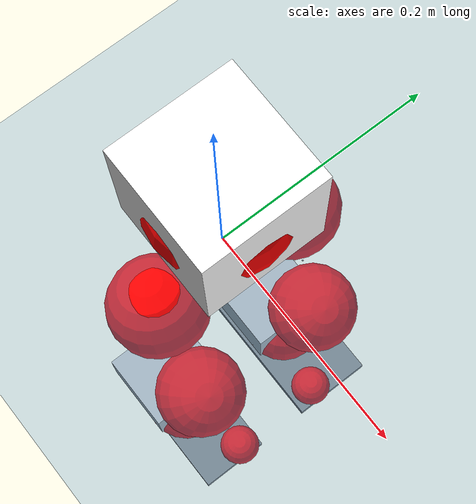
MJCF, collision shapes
<mujoco model="pi_12dof_release_v1">
  <compiler angle="radian" assetdir="assets" balanceinertia="true" inertiafromgeom="false"/>

  <option timestep="0.005" density="1.2" viscosity="2e-05"/>

  <size nkey="1"/>

  <visual>
    <quality shadowsize="8192"/>
    <map shadowclip="0.5"/>
  </visual>

  <default>
    <default class="/">
      <joint armature="0.01" damping="0.01" frictionloss="0.01"/>
      <geom contype="0" conaffinity="0" group="1" solref="-1000 -80"/>
      <site size="0.01 0.005 0.005" group="5"/>
      <general forcelimited="true" biastype="affine" gainprm="20" biasprm="0 -20 -0.5"/>
      <default class="foot">
        <geom size="0.0845 0.036 0.005" type="box" condim="6" group="4" priority="1" friction="0.9 0.2 0.2" solimp="0.015 1 0.005"/>
      </default>
      <default class="reward_collision_sphere">
        <geom group="5" rgba="1 0 0 1"/>
      </default>
    </default>
  </default>

  <asset>
    <texture type="skybox" colorspace="auto" name="//unnamed_texture_0" builtin="gradient" rgb1="0.95 0.95 0.95" rgb2="0.95 0.95 0.95" width="100" height="600"/>
    <texture type="2d" colorspace="auto" name="texplane" builtin="checker" rgb1="0.345 0.575 0.748" rgb2="0.345 0.575 0.748" markrgb="1 1 1" width="512" height="512"/>
    <material name="MatPlane" class="/" texture="texplane" texuniform="true" texrepeat="2 2" specular="0.9"/>
    <mesh name="baselink_1" class="/" file="baselink_1.STL"/>
    <mesh name="r_hip_pitch_link" class="/" file="r_hip_pitch_link.STL"/>
    <mesh name="r_hip_roll_link" class="/" file="r_hip_roll_link.STL"/>
    <mesh name="r_thigh_link" class="/" file="r_thigh_link.STL"/>
    <mesh name="r_calf_link" class="/" file="r_calf_link.STL"/>
    <mesh name="r_ankle_pitch_link" class="/" file="r_ankle_pitch_link.STL"/>
    <mesh name="r_ankle_roll_link" class="/" file="r_ankle_roll_link.STL"/>
    <mesh name="l_hip_pitch_link" class="/" file="l_hip_pitch_link.STL"/>
    <mesh name="l_hip_roll_link" class="/" file="l_hip_roll_link.STL"/>
    <mesh name="l_thigh_link" class="/" file="l_thigh_link.STL"/>
    <mesh name="l_calf_link" class="/" file="l_calf_link.STL"/>
    <mesh name="l_ankle_pitch_link" class="/" file="l_ankle_pitch_link.STL"/>
    <mesh name="l_ankle_roll_link" class="/" file="l_ankle_roll_link.STL"/>
  </asset>

  <worldbody>
    <geom name="floor" class="/" size="100 100 0.125" type="plane" group="0" material="MatPlane"/>
    <light name="toplight_shadow" class="/" pos="0 0 5" dir="0.0990148 0.0990148 -0.990148" type="directional" ambient="0.04 0.04 0.04" diffuse="0.55 0.55 0.55" specular="0.12 0.12 0.12"/>
    <light name="toplight_fill" class="/" pos="0 0 5" dir="0.0990148 0.0990148 -0.990148" type="directional" castshadow="false" ambient="0.04 0.04 0.04" diffuse="0.3 0.3 0.3" specular="0.08 0.08 0.08"/>
    <body name="trunk" pos="0.000389732 0.00103787 -0.00270559" quat="1 0.000593599 9.66405e-05 -0.000192419">
      <inertial pos="0.00179725 0.00209728 0.0510897" quat="0.695738 0.00988973 0.00882673 0.718173" mass="2.78275" diaginertia="0.016933 0.00452267 0.01388"/>
      <joint name="//unnamed_joint_0" type="free"/>
      <geom name="//unnamed_geom_1" class="/" type="mesh" density="0" rgba="1 1 1 1" mesh="baselink_1"/>
      <geom name="//unnamed_geom_2" class="/" size="0.0538926 0.0538926 0.0538926" pos="0 0 0.10066" type="box" rgba="1 1 1 1"/>
      <geom name="//unnamed_geom_3" class="reward_collision_sphere" size="0.0592819" pos="0 0 0.0880771"/>
      <site name="imu" class="/" pos="0.00500899 0.0141434 0.00751101" size="0.0107785"/>
      <camera name="track" class="/" pos="0 -1.73273 0" quat="0.707107 0.707107 0 0" mode="trackcom"/>
      <camera name="ego_camera" class="/" pos="0.0831711 0 0.226484" quat="-0.5 -0.5 0.5 0.5"/>
      <body name="r_hip_pitch_link" pos="-0.000309086 -0.0205545 -0.0388686" quat="0.992281 0.000696241 -0.124001 -0.000923486">
        <inertial pos="0.00191958 -0.050812 0.000392174" quat="-0.0205389 0.703062 -0.0291719 0.710233" mass="0.451544" diaginertia="0.000184369 4.99653e-05 0.000262779"/>
        <joint name="r_hip_pitch_joint" class="/" pos="0 0 0" axis="-0.0136709 -0.999882 0.0070159" range="-1.80543 1.24404" armature="0.00983535" damping="0.0225844" frictionloss="0.0121377"/>
        <geom name="//unnamed_geom_4" class="/" type="mesh" density="0" rgba="0.75294 0.75294 0.75294 1" mesh="r_hip_pitch_link"/>
        <geom name="//unnamed_geom_5" class="/" size="0.000538926 0.000538926 0.000538926" type="box" rgba="0.75294 0.75294 0.75294 1"/>
        <body name="r_hip_roll_link" pos="0.00321917 -0.048942 0.00247731" quat="0.999999 -0.000512433 0.000874421 -0.000298994">
          <inertial pos="0.000907505 -0.00264877 -0.0779332" quat="0.705724 -0.0789072 -0.0826978 0.699205" mass="0.477015" diaginertia="0.000561289 0.000129729 0.000392702"/>
          <joint name="r_hip_roll_joint" class="/" pos="0 0 0" axis="-0.999928 0.000635509 -0.0119746" range="-0.144488 0.445498" armature="0.00951453" damping="0.00637386" frictionloss="0.0118937"/>
          <geom name="//unnamed_geom_6" class="/" type="mesh" density="0" rgba="0.75294 0.75294 0.75294 1" mesh="r_hip_roll_link"/>
          <geom name="//unnamed_geom_7" class="/" size="0.000538926 0.000538926 0.000538926" type="box" rgba="0.75294 0.75294 0.75294 1"/>
          <geom name="//unnamed_geom_8" class="reward_collision_sphere" size="0.0431141"/>
          <body name="r_thigh_link" pos="0.000367465 -0.00129993 -0.0879551" quat="0.999999 0.000743286 1.69325e-05 0.00116071">
            <inertial pos="-0.00202465 0.000415231 -0.0570181" quat="0.738793 0.673834 0.000879417 -0.0115113" mass="0.140869" diaginertia="0.000202541 4.79026e-05 0.000186799"/>
            <joint name="r_thigh_joint" class="/" pos="0 0 0" axis="0.00453744 -0.00180568 -0.999988" range="-0.34755 0.651181" armature="0.00938547" damping="0.00952053" frictionloss="0.0105988"/>
            <geom name="//unnamed_geom_9" class="/" type="mesh" density="0" rgba="0.75294 0.75294 0.75294 1" mesh="r_thigh_link"/>
            <geom name="//unnamed_geom_10" class="/" size="0.000538926 0.000538926 0.000538926" type="box" rgba="0.75294 0.75294 0.75294 1"/>
            <body name="r_calf_link" pos="0.000662138 -0.000137291 -0.0898106" quat="0.947735 -0.0010879 0.319056 -0.000131901">
              <inertial pos="0.00225466 -0.00269065 -0.0881315" quat="0.999914 -0.0129064 0.00137143 0.00191246" mass="1.01494" diaginertia="0.00551938 0.00164902 0.000512527"/>
              <joint name="r_calf_joint" class="/" pos="0 0 0" axis="-0.00162239 -0.999926 -0.0120669" range="-1.63596 0.6632" armature="0.0107404" damping="0.0107226" frictionloss="0.0120934"/>
              <geom name="//unnamed_geom_11" class="/" type="mesh" density="0" rgba="0.75294 0.75294 0.75294 1" mesh="r_calf_link"/>
              <geom name="//unnamed_geom_12" class="/" size="0.000538926 0.000538926 0.000538926" type="box" rgba="0.75294 0.75294 0.75294 1"/>
              <geom name="//unnamed_geom_13" class="reward_collision_sphere" size="0.0431141"/>
              <body name="r_ankle_pitch_link" pos="0.00163102 -0.0010104 -0.176064" quat="0.980116 0.000118028 -0.198423 0.000245051">
                <inertial pos="0.00811566 0.000661903 0.000727504" quat="0.00256226 0.699467 -0.0109744 0.714576" mass="0.220223" diaginertia="0.000504262 0.000102092 0.00037432"/>
                <joint name="r_ankle_pitch_joint" class="/" pos="0 0 0" axis="0.00468779 -0.999986 0.00236961" stiffness="0.000781511" range="-1.24433 0.493422" armature="0.0102641" damping="0" frictionloss="0.0123076"/>
                <geom name="//unnamed_geom_14" class="/" type="mesh" density="0" rgba="0.75294 0.75294 0.75294 1" mesh="r_ankle_pitch_link"/>
                <geom name="//unnamed_geom_15" class="/" size="0.0420362 0.0431141 0.0269463" type="box" rgba="0.75294 0.75294 0.75294 1"/>
                <body name="r_ankle_roll_link" pos="0.0848445 -0.000350907 -0.00212454" quat="1 0.000219873 -0.000191197 0.000265522">
                  <inertial pos="-0.0268307 -0.00112622 -0.0180722" quat="0.554992 0.430959 0.440467 0.558791" mass="0.655296" diaginertia="0.00189931 0.000502948 0.000862512"/>
                  <joint name="r_ankle_roll_joint" class="/" pos="0 0 0" axis="-0.999991 0.00417394 -0.00120795" stiffness="0.010045" range="-0.176265 0.127835" armature="0.0115501" damping="0.00830806" frictionloss="0.0105897"/>
                  <geom name="//unnamed_geom_16" class="/" type="mesh" density="0" rgba="0.75294 0.75294 0.75294 1" mesh="r_ankle_roll_link"/>
                  <geom name="//unnamed_geom_17" class="/" type="mesh" rgba="0.75294 0.75294 0.75294 1" mesh="r_ankle_roll_link"/>
                  <geom name="right_foot" class="foot" size="0.0871031 0.0373966 0.00474459" pos="-0.0565563 0 -0.0553627"/>
                  <geom name="//unnamed_geom_19" class="reward_collision_sphere" size="0.0431141" pos="-0.0554474 0 -0.0251649"/>
                  <geom name="//unnamed_geom_20" class="reward_collision_sphere" size="0.021557" pos="0.0166342 0.0173273 -0.0503298"/>
                  <geom name="//unnamed_geom_21" class="reward_collision_sphere" size="0.021557" pos="-0.133074 0.0173273 -0.0503298"/>
                  <site name="right_foot" class="foot" pos="-0.0565563 0 -0.0553627" size="0.0107785"/>
                </body>
              </body>
            </body>
          </body>
        </body>
      </body>
      <body name="l_hip_pitch_link" pos="0.00082598 0.0200343 -0.0434205" quat="0.992161 -0.000255264 -0.124963 0.000386425">
        <inertial pos="0.00325489 0.0478548 -0.00281217" quat="-0.0380002 0.705345 0.029833 0.707216" mass="0.498455" diaginertia="0.000214237 5.20236e-05 0.000325814"/>
        <joint name="l_hip_pitch_joint" class="/" pos="0 0 0" axis="0.00381195 0.999993 0.0004679" range="-1.20431 1.75846" armature="0.0107609" damping="0.0262258" frictionloss="0.0109493"/>
        <geom name="//unnamed_geom_22" class="/" type="mesh" density="0" rgba="0.75294 0.75294 0.75294 1" mesh="l_hip_pitch_link"/>
        <geom name="//unnamed_geom_23" class="/" size="0.000538926 0.000538926 0.000538926" type="box" rgba="0.75294 0.75294 0.75294 1"/>
        <body name="l_hip_roll_link" pos="0.000305722 0.0470758 0.00194579" quat="1 0.000217428 0.00019026 5.87561e-05">
          <inertial pos="-0.00161137 0.000248984 -0.0766315" quat="0.706188 -0.0769519 -0.0737918 0.699951" mass="0.500426" diaginertia="0.000561864 0.000137713 0.000426348"/>
          <joint name="l_hip_roll_joint" class="/" pos="0 0 0" axis="-0.999922 0.000974706 -0.0124716" stiffness="0.00565636" range="-0.488275 0.163563" armature="0.00950151" damping="0.00882647" frictionloss="0.00966213"/>
          <geom name="//unnamed_geom_24" class="/" type="mesh" density="0" rgba="0.75294 0.75294 0.75294 1" mesh="l_hip_roll_link"/>
          <geom name="//unnamed_geom_25" class="/" size="0.000538926 0.000538926 0.000538926" type="box" rgba="0.75294 0.75294 0.75294 1"/>
          <geom name="//unnamed_geom_26" class="reward_collision_sphere" size="0.0431141"/>
          <body name="l_thigh_link" pos="0.000659803 -0.000818853 -0.0878144" quat="1 -9.03366e-06 0.000280365 -8.16386e-06">
            <inertial pos="-0.00161789 -0.000658106 -0.060117" quat="0.670175 0.742103 -0.00242828 -0.0119602" mass="0.144855" diaginertia="0.000207124 4.67364e-05 0.000185801"/>
            <joint name="l_thigh_joint" class="/" pos="0 0 0" axis="0.00119541 0.0122987 -0.999924" stiffness="0.0109305" range="-0.616448 0.352073" armature="0.0121321" damping="0" frictionloss="0.0122911"/>
            <geom name="//unnamed_geom_27" class="/" type="mesh" density="0" rgba="0.75294 0.75294 0.75294 1" mesh="l_thigh_link"/>
            <geom name="//unnamed_geom_28" class="/" size="0.000538926 0.000538926 0.000538926" type="box" rgba="0.75294 0.75294 0.75294 1"/>
            <body name="l_calf_link" pos="0.00155776 -0.00256935 -0.0890528" quat="0.94771 -0.000260462 0.319133 -0.000377118">
              <inertial pos="0.00123063 0.00527889 -0.0884727" quat="0.999863 -0.00339487 -0.00353849 0.0157908" mass="1.01983" diaginertia="0.00594485 0.00173081 0.000559431"/>
              <joint name="l_calf_joint" class="/" pos="0 0 0" axis="-0.00350879 0.999927 0.0115462" range="-0.640755 1.59618" armature="0.011585" damping="0.00615101" frictionloss="0.00972021"/>
              <geom name="//unnamed_geom_29" class="/" type="mesh" density="0" rgba="0.75294 0.75294 0.75294 1" mesh="l_calf_link"/>
              <geom name="//unnamed_geom_30" class="/" size="0.000538926 0.000538926 0.000538926" type="box" rgba="0.75294 0.75294 0.75294 1"/>
              <geom name="//unnamed_geom_31" class="reward_collision_sphere" size="0.0431141"/>
              <body name="l_ankle_pitch_link" pos="-0.00126871 0.00222569 -0.176629" quat="0.980053 4.06456e-05 -0.198734 -4.53089e-05">
                <inertial pos="0.00580734 -0.000205011 0.000309604" quat="-0.00163287 0.706938 0.00252192 0.707269" mass="0.215535" diaginertia="0.000517557 0.000112257 0.000381001"/>
                <joint name="l_ankle_pitch_joint" class="/" pos="0 0 0" axis="-0.00388316 0.999991 -0.00170016" range="-0.501901 1.28218" armature="0.0108862" damping="0" frictionloss="0.0121801"/>
                <geom name="//unnamed_geom_32" class="/" type="mesh" density="0" rgba="0.75294 0.75294 0.75294 1" mesh="l_ankle_pitch_link"/>
                <geom name="//unnamed_geom_33" class="/" size="0.0420362 0.0431141 0.0269463" type="box" rgba="0.75294 0.75294 0.75294 1"/>
                <body name="l_ankle_roll_link" pos="0.0835337 -0.000104974 0.00279823" quat="1 0.000352824 0.00046462 0.00019436">
                  <inertial pos="-0.0292913 -0.00119094 -0.0174129" quat="0.570213 0.426238 0.425591 0.558614" mass="0.655386" diaginertia="0.00194431 0.00049833 0.000913843"/>
                  <joint name="l_ankle_roll_joint" class="/" pos="0 0 0" axis="-0.999989 -0.000399135 -0.00468582" range="-0.157972 0.207234" armature="0.00973428" damping="0.0225924" frictionloss="0.00947611"/>
                  <geom name="//unnamed_geom_34" class="/" type="mesh" density="0" rgba="0.75294 0.75294 0.75294 1" mesh="l_ankle_roll_link"/>
                  <geom name="//unnamed_geom_35" class="/" type="mesh" rgba="0.75294 0.75294 0.75294 1" mesh="l_ankle_roll_link"/>
                  <geom name="left_foot" class="foot" size="0.0909706 0.0435571 0.00496118" pos="-0.0565563 0 -0.0553627"/>
                  <geom name="//unnamed_geom_37" class="reward_collision_sphere" size="0.0431141" pos="-0.0554474 0 -0.0251649"/>
                  <geom name="//unnamed_geom_38" class="reward_collision_sphere" size="0.021557" pos="0.0166342 -0.0173273 -0.0503298"/>
                  <geom name="//unnamed_geom_39" class="reward_collision_sphere" size="0.021557" pos="-0.133074 -0.0173273 -0.0503298"/>
                  <site name="left_foot" class="foot" pos="-0.0565563 0 -0.0553627" size="0.0107785"/>
                </body>
              </body>
            </body>
          </body>
        </body>
      </body>
    </body>
  </worldbody>

  <contact>
    <pair class="/" geom1="floor" geom2="right_foot" name="//unnamed_contact_1"/>
    <pair class="/" geom1="floor" geom2="left_foot" name="//unnamed_contact_0"/>
  </contact>

  <actuator>
    <general name="r_hip_pitch_joint" class="/" joint="r_hip_pitch_joint" forcerange="-22.9134 22.9134" gainprm="21.0923" biasprm="0 -21.0923 -0.578227"/>
    <general name="r_hip_roll_joint" class="/" joint="r_hip_roll_joint" forcerange="-25.0676 25.0676" gainprm="21.0923" biasprm="0 -21.0923 -0.578227"/>
    <general name="r_thigh_joint" class="/" joint="r_thigh_joint" forcerange="-22.803 22.803" gainprm="21.0923" biasprm="0 -21.0923 -0.578227"/>
    <general name="r_calf_joint" class="/" joint="r_calf_joint" forcerange="-23.1296 23.1296" gainprm="21.0923" biasprm="0 -21.0923 -0.578227"/>
    <general name="r_ankle_pitch_joint" class="/" joint="r_ankle_pitch_joint" forcerange="-22.8742 22.8742" gainprm="21.0923" biasprm="0 -21.0923 -0.578227"/>
    <general name="r_ankle_roll_joint" class="/" joint="r_ankle_roll_joint" forcerange="-21.3753 21.3753" gainprm="21.0923" biasprm="0 -21.0923 -0.578227"/>
    <general name="l_hip_pitch_joint" class="/" joint="l_hip_pitch_joint" forcerange="-22.97 22.97" gainprm="21.0923" biasprm="0 -21.0923 -0.578227"/>
    <general name="l_hip_roll_joint" class="/" joint="l_hip_roll_joint" forcerange="-20.2919 20.2919" gainprm="21.0923" biasprm="0 -21.0923 -0.578227"/>
    <general name="l_thigh_joint" class="/" joint="l_thigh_joint" forcerange="-23.1523 23.1523" gainprm="21.0923" biasprm="0 -21.0923 -0.578227"/>
    <general name="l_calf_joint" class="/" joint="l_calf_joint" forcerange="-23.2443 23.2443" gainprm="21.0923" biasprm="0 -21.0923 -0.578227"/>
    <general name="l_ankle_pitch_joint" class="/" joint="l_ankle_pitch_joint" forcerange="-24.9854 24.9854" gainprm="21.0923" biasprm="0 -21.0923 -0.578227"/>
    <general name="l_ankle_roll_joint" class="/" joint="l_ankle_roll_joint" forcerange="-22.4639 22.4639" gainprm="21.0923" biasprm="0 -21.0923 -0.578227"/>
  </actuator>

  <sensor>
    <gyro site="imu" name="imu_angular_velocity"/>
    <velocimeter site="imu" name="imu_linear_velocity"/>
    <framelinvel objtype="site" objname="left_foot" name="left_foot_global_linear_velocity"/>
    <framelinvel objtype="site" objname="right_foot" name="right_foot_global_linear_velocity"/>
  </sensor>

  <keyframe>
    <key name="home" qpos="0 0 0.291 1 0 0 0 0.4 0 0 -0.8 0.4 0 -0.4 0 0 0.8 -0.4 0"/>
  </keyframe>
</mujoco>
